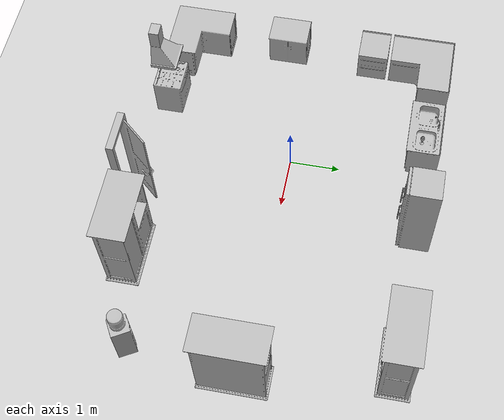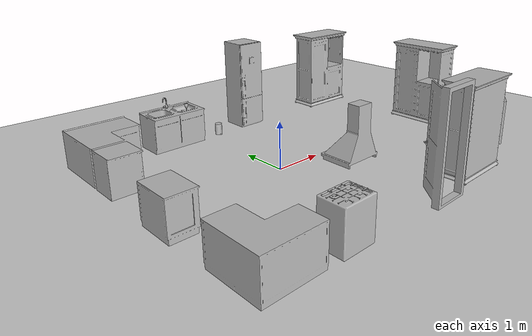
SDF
<sdf version="1.4">
 <world name="default">
  <light name="sun" type="directional">
   <pose>0 0 10 0 -0 0</pose>
   <diffuse>0.8 0.8 0.8 1</diffuse>
   <specular>0.2 0.2 0.2 1</specular>
   <attenuation>
    <range>1000</range>
    <constant>0.9</constant>
    <linear>0.01</linear>
    <quadratic>0.001</quadratic>
   </attenuation>
   <direction>-0.5 0.1 -0.9</direction>
  </light>
  <model name="ground_plane">
   <static>1</static>
   <link name="link">
    <collision name="collision">
     <geometry><plane><normal>0 0 1</normal><size>100 100</size></plane></geometry>
     <surface><friction><ode><mu>100</mu><mu2>50</mu2></ode></friction></surface>
    </collision>
    <visual name="visual">
     <cast_shadows>0</cast_shadows>
     <geometry><plane><normal>0 0 1</normal><size>100 100</size></plane></geometry>
     <material>
      <script><uri>file://media/materials/scripts/gazebo.material</uri><name>Gazebo/Grey</name></script>
     </material>
    </visual>
    <velocity_decay><linear>0</linear><angular>0</angular></velocity_decay>
   </link>
  </model>
  <physics type="ode">
   <max_step_size>0.001</max_step_size>
   <real_time_factor>1</real_time_factor>
   <real_time_update_rate>1000</real_time_update_rate>
   <gravity>0 0 -9.8</gravity>
  </physics>
  <scene><ambient>0.4 0.4 0.4 1</ambient><background>0.7 0.7 0.7 1</background><shadows>1</shadows></scene>
  <spherical_coordinates>
   <surface_model>EARTH_WGS84</surface_model>
   <latitude_deg>0</latitude_deg>
   <longitude_deg>0</longitude_deg>
   <elevation>0</elevation>
   <heading_deg>0</heading_deg>
  </spherical_coordinates>
  <model name="122_0">
   <pose>1.19242 -2.98535 0 0 0 -1.5708</pose>
   <static>1</static>
   <link name="link">
    <collision name="collision"><geometry><box><size>0.650001 0.8 2</size></box></geometry></collision>
    <visual name="visual"><geometry><mesh><uri>model://122/122.dae</uri></mesh></geometry></visual>
    <velocity_decay><linear>0</linear><angular>0</angular></velocity_decay>
   </link>
  </model>
  <model name="284_0">
   <pose>-2.35181 2.30839 0.03 0 -0 0</pose>
   <static>1</static>
   <link name="link">
    <collision name="collision"><geometry><box><size>1.25969 1.26017 2</size></box></geometry></collision>
    <visual name="visual"><geometry><mesh><uri>model://284/284.dae</uri></mesh></geometry></visual>
    <velocity_decay><linear>0</linear><angular>0</angular></velocity_decay>
   </link>
  </model>
  <model name="99_0">
   <pose>-2.35482 -2.31361 0.03 0 -0 0</pose>
   <static>1</static>
   <link name="link">
    <collision name="collision"><geometry><box><size>1.2 1.2 2</size></box></geometry></collision>
    <visual name="visual"><geometry><mesh><uri>model://99/99.dae</uri></mesh></geometry></visual>
    <velocity_decay><linear>0</linear><angular>0</angular></velocity_decay>
   </link>
  </model>
  <model name="282_0">
   <pose>-2.65482 1.30988 0.03 0 -0 0</pose>
   <static>1</static>
   <link name="link">
    <collision name="collision"><geometry><box><size>0.66 0.6 2</size></box></geometry></collision>
    <visual name="visual"><geometry><mesh><uri>model://282/282.dae</uri></mesh></geometry></visual>
    <velocity_decay><linear>0</linear><angular>0</angular></velocity_decay>
   </link>
  </model>
  <model name="92_0">
   <pose>-2.71482 -0.492 0.03 0 -0 0</pose>
   <static>1</static>
   <link name="link">
    <collision name="collision"><geometry><box><size>0.600001 0.800014 2</size></box></geometry></collision>
    <visual name="visual"><geometry><mesh><uri>model://92/92.dae</uri></mesh></geometry></visual>
    <velocity_decay><linear>0</linear><angular>0</angular></velocity_decay>
   </link>
  </model>
  <model name="285_0">
   <pose>-0.794818 2.57816 0.03 0 0 -1.5708</pose>
   <static>1</static>
   <link name="link">
    <collision name="collision"><geometry><box><size>0.66 1.2 2</size></box></geometry></collision>
    <visual name="visual"><geometry><mesh><uri>model://285/285.dae</uri></mesh></geometry></visual>
    <velocity_decay><linear>0</linear><angular>0</angular></velocity_decay>
   </link>
  </model>
  <model name="264_0">
   <pose>-1.12178 -2.6742 0.03 0 -0 1.5708</pose>
   <static>1</static>
   <link name="link">
    <collision name="collision"><geometry><box><size>0.589299 0.69 2</size></box></geometry></collision>
    <visual name="visual"><geometry><mesh><uri>model://264/264.dae</uri></mesh></geometry></visual>
    <velocity_decay><linear>0</linear><angular>0</angular></velocity_decay>
   </link>
  </model>
  <model name="528_0">
   <pose>2.55318 -2.61898 0.03 0 -0 1.5708</pose>
   <static>1</static>
   <link name="link">
    <collision name="collision"><geometry><box><size>0.678654 1.36865 2</size></box></geometry></collision>
    <visual name="visual"><geometry><mesh><uri>model://528/528.dae</uri></mesh></geometry></visual>
    <velocity_decay><linear>0</linear><angular>0</angular></velocity_decay>
   </link>
  </model>
  <model name="102_0">
   <pose>1.22472 2.63315 0.03 0 0 -1.5708</pose>
   <static>1</static>
   <link name="link">
    <collision name="collision"><geometry><box><size>0.685405 0.599801 2</size></box></geometry></collision>
    <visual name="visual"><geometry><mesh><uri>model://102/102.dae</uri></mesh></geometry></visual>
    <velocity_decay><linear>0</linear><angular>0</angular></velocity_decay>
   </link>
  </model>
  <model name="206_0">
   <pose>4.38918 -2.21999 0.03 0 -0 2.09215</pose>
   <static>1</static>
   <link name="link">
    <collision name="collision"><geometry><box><size>0.36 0.35 2</size></box></geometry></collision>
    <visual name="visual"><geometry><mesh><uri>model://206/206.dae</uri></mesh></geometry></visual>
    <velocity_decay><linear>0</linear><angular>0</angular></velocity_decay>
   </link>
  </model>
  <model name="241_0">
   <pose>-1.10761 -2.66172 1.41 0 -0 1.5708</pose>
   <static>1</static>
   <link name="link">
    <collision name="collision"><geometry><box><size>0.51 0.6 2</size></box></geometry></collision>
    <visual name="visual"><geometry><mesh><uri>model://241/241.dae</uri></mesh></geometry></visual>
    <velocity_decay><linear>0</linear><angular>0</angular></velocity_decay>
   </link>
  </model>
  <model name="528_1">
   <pose>3.87317 2.63406 0.03 0 0 -1.5708</pose>
   <static>1</static>
   <link name="link">
    <collision name="collision"><geometry><box><size>0.678654 1.36865 2</size></box></geometry></collision>
    <visual name="visual"><geometry><mesh><uri>model://528/528.dae</uri></mesh></geometry></visual>
    <velocity_decay><linear>0</linear><angular>0</angular></velocity_decay>
   </link>
  </model>
  <model name="528_2">
   <pose>4.62087 -0.168 0.03 0 -0 3.14159</pose>
   <static>1</static>
   <link name="link">
    <collision name="collision"><geometry><box><size>0.678654 1.36865 2</size></box></geometry></collision>
    <visual name="visual"><geometry><mesh><uri>model://528/528.dae</uri></mesh></geometry></visual>
    <velocity_decay><linear>0</linear><angular>0</angular></velocity_decay>
   </link>
  </model>
  <model name="244_0">
   <pose>-0.470824 2.53024 0.700239 0 -0 0</pose>
   <static>1</static>
   <link name="link">
    <collision name="collision"><geometry><box><size>0.076866 0.079 2</size></box></geometry></collision>
    <visual name="visual"><geometry><mesh><uri>model://244/244.dae</uri></mesh></geometry></visual>
    <velocity_decay><linear>0</linear><angular>0</angular></velocity_decay>
   </link>
  </model>
  <model name="395_0">
   <pose>0.272504 2.42436 0.03 0 0 -1.59325</pose>
   <static>1</static>
   <link name="link">
    <collision name="collision"><geometry><box><size>0.199765 0.157 2</size></box></geometry></collision>
    <visual name="visual"><geometry><mesh><uri>model://395/395.dae</uri></mesh></geometry></visual>
    <velocity_decay><linear>0</linear><angular>0</angular></velocity_decay>
   </link>
  </model>
 </world>
</sdf>
